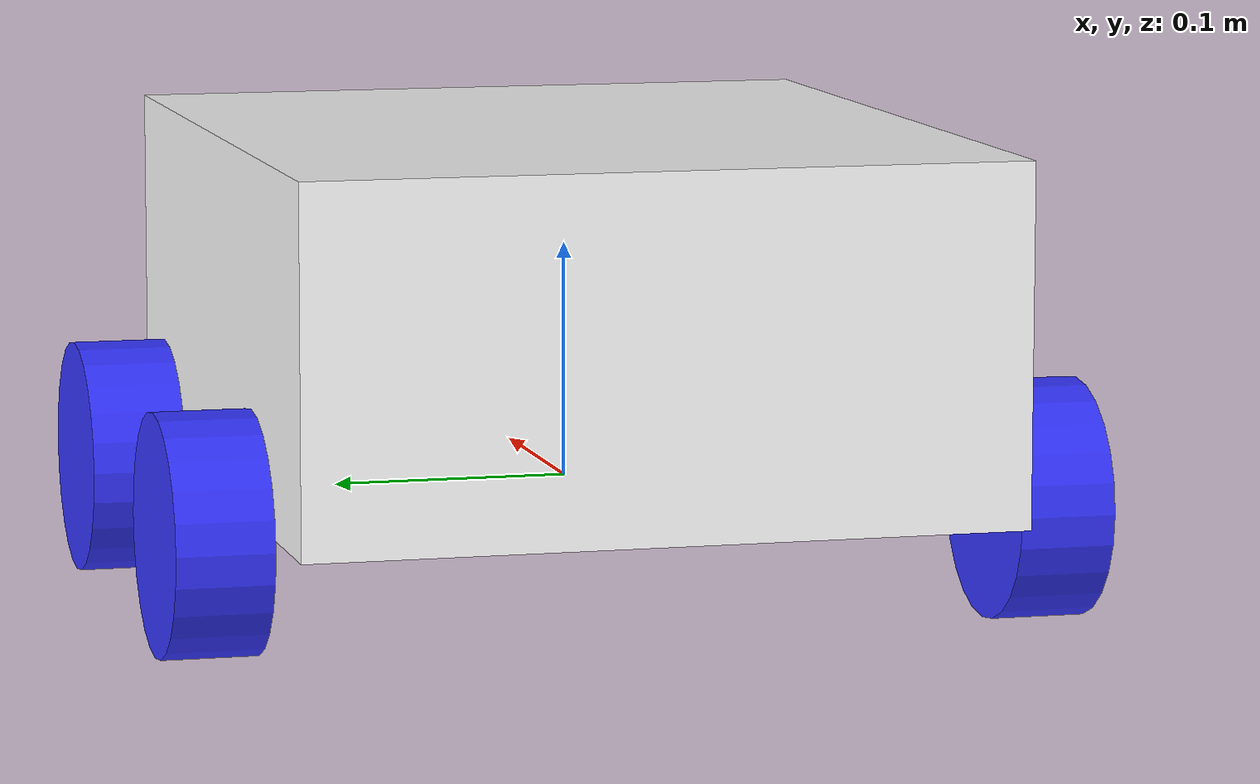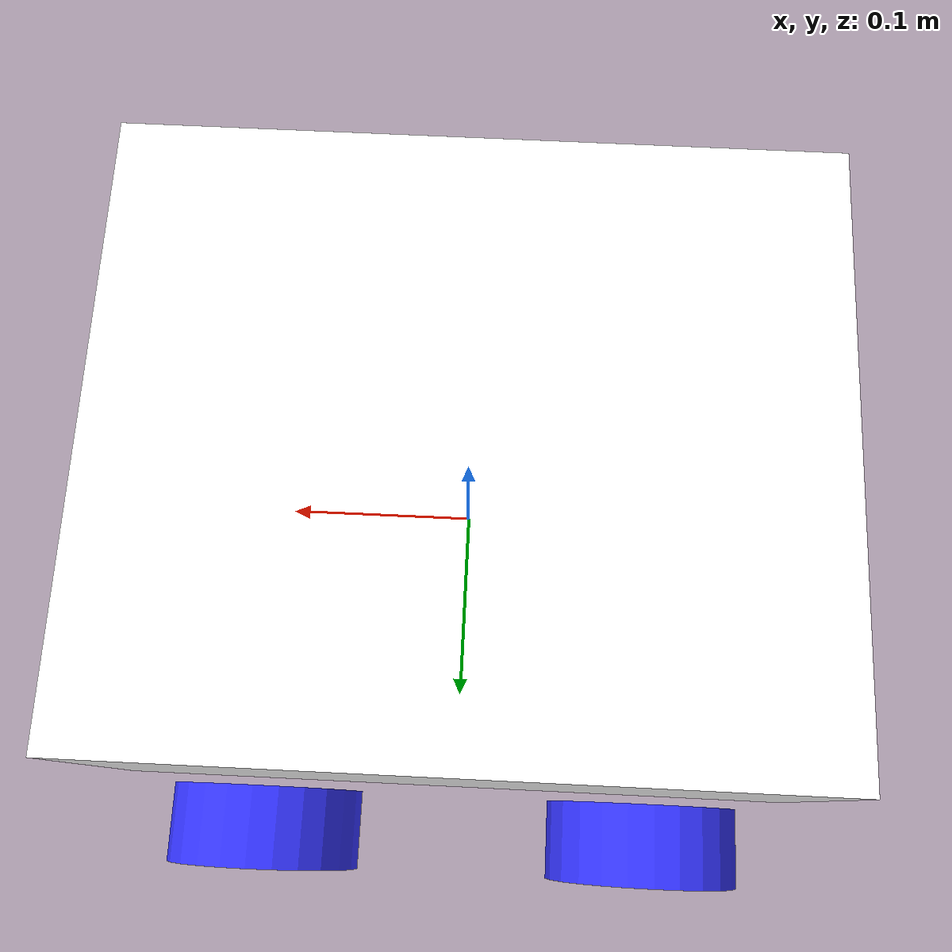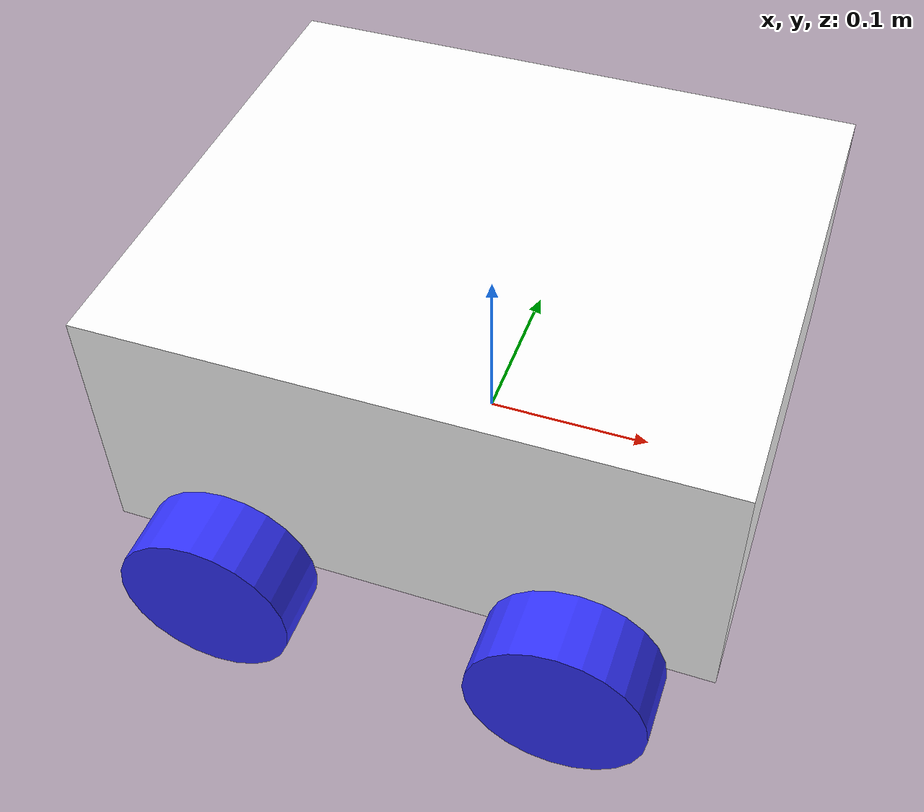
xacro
<?xml version="1.0"?>
<robot xmlns:xacro="http://www.ros.org/wiki/xacro" >

    <xacro:include filename="inertial_macros.xacro"/>

    <xacro:property name="chassis_length" value="0.335"/>
    <xacro:property name="chassis_width" value="0.265"/>
    <xacro:property name="chassis_height" value="0.138"/>
    <xacro:property name="chassis_mass" value="1.0"/>
    <xacro:property name="wheel_radius" value="0.034"/>
    <xacro:property name="wheel_thickness" value="0.026"/>
    <xacro:property name="wheel_mass" value="0.05"/>
    <xacro:property name="wheel_offset_x" value="0.226"/>
    <xacro:property name="wheel_offset_y" value="0.166"/>
    <xacro:property name="wheel_offset_z" value="0.01"/>
    <xacro:property name="caster_wheel_radius" value="0.01"/>
    <xacro:property name="caster_wheel_mass" value="0.01"/>
    <xacro:property name="caster_wheel_offset_x" value="0.075"/>
    <xacro:property name="caster_wheel_offset_z" value="${wheel_offset_z - wheel_radius + caster_wheel_radius}"/>

    <material name="white">
        <color rgba="1 1 1 1" />
    </material>

    <material name="orange">
        <color rgba="1 0.3 0.1 1"/>
    </material>

    <material name="blue">
        <color rgba="0.2 0.2 1 1"/>
    </material>

    <material name="black">
        <color rgba="0 0 0 1"/>
    </material>

    <!-- BASE LINK -->

    <link name="base_link">

    </link>

    <!-- CHASSIS LINK -->

    <joint name="chassis_joint" type="fixed">
        <parent link="base_link"/>
        <child link="chassis"/>
        <origin xyz="0 0 0"/>
    </joint>

    <link name="chassis">
        <visual>
            <origin xyz="0 0 0.075"/>
            <geometry>
                <box size="0.35 0.3 0.15"/>
            </geometry>
            <material name="white"/>
        </visual>
        <collision>
            <origin xyz="0 0 0.075"/>
            <geometry>
                <box size="0.35 0.3 0.15"/>
            </geometry>
        </collision>
        <xacro:inertial_box mass="0.5" x="0.35" y="0.3" z="0.15">
            <origin xyz="0 0 0.075" rpy="0 0 0"/>
        </xacro:inertial_box>
    </link>

    <gazebo reference="chassis">
        <material>Gazebo/White</material>
    </gazebo>

    <!-- LEFT WHEEL LINK 1-->

    <joint name="left_wheel_joint" type="continuous">
        <parent link="base_link"/>
        <child link="left_wheel"/>
        <origin xyz="-0.1 0.175 0" rpy="-${pi/2} 0 0" />
        <axis xyz="0 0 1"/>
    </joint>

    <link name="left_wheel">
        <visual>
            <geometry>
                <cylinder radius="0.05" length="0.04"/>
            </geometry>
            <material name="blue"/>
        </visual>
        <collision>
            <geometry>
                <cylinder radius="0.05" length="0.04"/>
            </geometry>
        </collision>
        <xacro:inertial_cylinder mass="0.1" length="0.04" radius="0.05">
            <origin xyz="0 0 0" rpy="0 0 0"/>
        </xacro:inertial_cylinder>
    </link>

    <gazebo reference="left_wheel">
        <material>Gazebo/Blue</material>
    </gazebo>

    <!-- LEFT WHEEL LINK 2-->

    <joint name="left_wheel_joint_2" type="continuous">
        <parent link="base_link"/>
        <child link="left_wheel_2"/>
        <origin xyz="0.1 0.175 0" rpy="-${pi/2} 0 0" />
        <axis xyz="0 0 1"/>
    </joint>

    <link name="left_wheel_2">
        <visual>
            <geometry>
                <cylinder radius="0.05" length="0.04"/>
            </geometry>
            <material name="blue"/>
        </visual>
        <collision>
            <geometry>
                <cylinder radius="0.05" length="0.04"/>
            </geometry>
        </collision>
        <xacro:inertial_cylinder mass="0.1" length="0.04" radius="0.05">
            <origin xyz="0 0 0" rpy="0 0 0"/>
        </xacro:inertial_cylinder>
    </link>

    <gazebo reference="left_wheel_2">
        <material>Gazebo/Blue</material>
    </gazebo>

    <!-- RIGHT WHEEL LINK 1 -->

    <joint name="right_wheel_joint" type="continuous">
        <parent link="base_link"/>
        <child link="right_wheel"/>
        <origin xyz="-0.1 -0.175 0" rpy="${pi/2} 0 0" />
        <axis xyz="0 0 -1"/>
    </joint>

    <link name="right_wheel">
        <visual>
            <geometry>
                <cylinder radius="0.05" length="0.04"/>
            </geometry>
            <material name="blue"/>
        </visual>
        <collision>
            <geometry>
                <cylinder radius="0.05" length="0.04"/>
            </geometry>
        </collision>
        <xacro:inertial_cylinder mass="0.1" length="0.04" radius="0.05">
            <origin xyz="0 0 0" rpy="0 0 0"/>
        </xacro:inertial_cylinder>
    </link>

    <gazebo reference="right_wheel">
        <material>Gazebo/Blue</material>
    </gazebo>

    <!-- RIGHT WHEEL LINK 2 -->

    <joint name="right_wheel_joint_2" type="continuous">
        <parent link="base_link"/>
        <child link="right_wheel_2"/>
        <origin xyz="0.1 -0.175 0" rpy="${pi/2} 0 0" />
        <axis xyz="0 0 -1"/>
    </joint>

    <link name="right_wheel_2">
        <visual>
            <geometry>
                <cylinder radius="0.05" length="0.04"/>
            </geometry>
            <material name="blue"/>
        </visual>
        <collision>
            <geometry>
                <cylinder radius="0.05" length="0.04"/>
            </geometry>
        </collision>
        <xacro:inertial_cylinder mass="0.1" length="0.04" radius="0.05">
            <origin xyz="0 0 0" rpy="0 0 0"/>
        </xacro:inertial_cylinder>
    </link>

    <gazebo reference="right_wheel_2">
        <material>Gazebo/Blue</material>
    </gazebo>

</robot>
